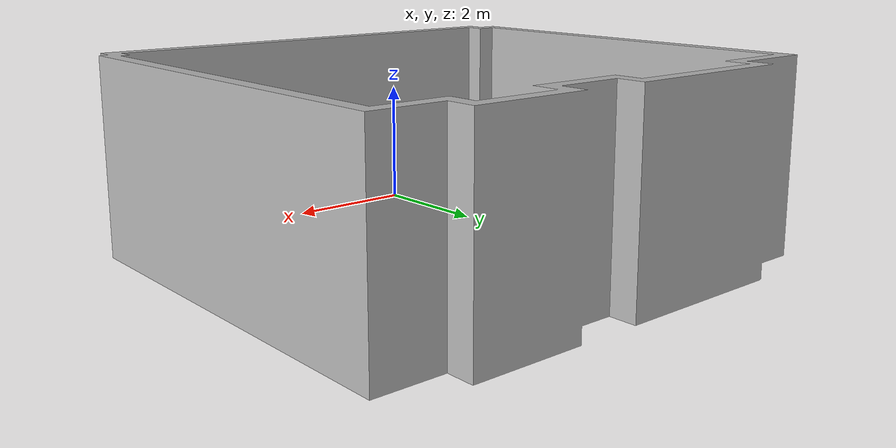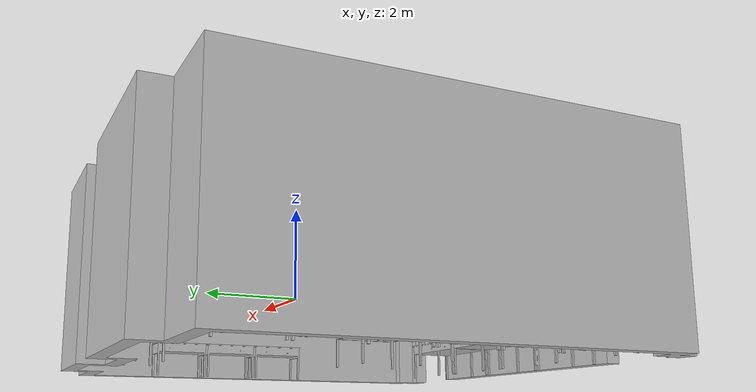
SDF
<?xml version="1.0" ?>
<sdf version='1.4'>
  <model name='room306'>
    <link name='room'>
      <pose>0 10 0 0 -0 0</pose>
      <inertial>
        <pose>-1.56018 -10.0239 0.408628 0 -0 0</pose>
        <mass>47990.7</mass>
        <inertia>
          <ixx>704440</ixx>
          <ixy>-5413.76</ixy>
          <ixz>-2439.59</ixz>
          <iyy>786576</iyy>
          <iyz>3273.3</iyz>
          <izz>1.36061e+06</izz>
        </inertia>
      </inertial>
      <collision name='room_collision'>
        <pose>0 0 0 0 -0 0</pose>
        <geometry>
          <mesh>
            <scale>1 1 1</scale>
            <uri>model://room306/meshes/room.stl</uri>
          </mesh>
        </geometry>
      </collision>
      <collision name='room_collision_table1'>
        <pose>-1.30874 -6.296 -0.804594 1.5708 -0 0</pose>
        <geometry>
          <mesh>
            <scale>1 1 1</scale>
            <uri>model://room306/meshes/table1.stl</uri>
          </mesh>
        </geometry>
      </collision>
      <collision name='room_collision_table10'>
        <pose>-6.34474 -13.596 -0.804594 1.5708 -0 0</pose>
        <geometry>
          <mesh>
            <scale>1 1 1</scale>
            <uri>model://room306/meshes/table10.stl</uri>
          </mesh>
        </geometry>
      </collision>
      <collision name='room_collision_table11'>
        <pose>-3.21574 -14.646 -0.772094 1.5708 -0 0</pose>
        <geometry>
          <mesh>
            <scale>1 1 1</scale>
            <uri>model://room306/meshes/table11.stl</uri>
          </mesh>
        </geometry>
      </collision>
      <collision name='room_collision_table12'>
        <pose>-1.41574 -14.646 -0.772094 1.5708 -0 0</pose>
        <geometry>
          <mesh>
            <scale>1 1 1</scale>
            <uri>model://room306/meshes/table12.stl</uri>
          </mesh>
        </geometry>
      </collision>
      <collision name='room_collision_table13'>
        <pose>0.38426 -14.646 -0.772094 1.5708 -0 0</pose>
        <geometry>
          <mesh>
            <scale>1 1 1</scale>
            <uri>model://room306/meshes/table13.stl</uri>
          </mesh>
        </geometry>
      </collision>
      <collision name='room_collision_table14'>
        <pose>-2.45874 -10.361 -0.767094 1.5708 -0 0</pose>
        <geometry>
          <mesh>
            <scale>1 1 1</scale>
            <uri>model://room306/meshes/table14.stl</uri>
          </mesh>
        </geometry>
      </collision>
      <collision name='room_collision_table2'>
        <pose>3.24626 -8.806 -0.804594 1.5708 -0 0</pose>
        <geometry>
          <mesh>
            <scale>1 1 1</scale>
            <uri>model://room306/meshes/table2.stl</uri>
          </mesh>
        </geometry>
      </collision>
      <collision name='room_collision_table3'>
        <pose>3.24626 -7.606 -0.804594 1.5708 -0 0</pose>
        <geometry>
          <mesh>
            <scale>1 1 1</scale>
            <uri>model://room306/meshes/table3.stl</uri>
          </mesh>
        </geometry>
      </collision>
      <collision name='room_collision_table4'>
        <pose>-1.30874 -6.296 -0.804594 1.5708 -0 0</pose>
        <geometry>
          <mesh>
            <scale>1 1 1</scale>
            <uri>model://room306/meshes/table4.stl</uri>
          </mesh>
        </geometry>
      </collision>
      <collision name='room_collision_table5'>
        <pose>-6.34474 -7.596 -0.804594 1.5708 -0 0</pose>
        <geometry>
          <mesh>
            <scale>1 1 1</scale>
            <uri>model://room306/meshes/table5.stl</uri>
          </mesh>
        </geometry>
      </collision>
      <collision name='room_collision_table6'>
        <pose>-6.34474 -8.796 -0.804594 1.5708 -0 0</pose>
        <geometry>
          <mesh>
            <scale>1 1 1</scale>
            <uri>model://room306/meshes/table6.stl</uri>
          </mesh>
        </geometry>
      </collision>
      <collision name='room_collision_table7'>
        <pose>-6.34474 -9.996 -0.804594 1.5708 -0 0</pose>
        <geometry>
          <mesh>
            <scale>1 1 1</scale>
            <uri>model://room306/meshes/table7.stl</uri>
          </mesh>
        </geometry>
      </collision>
      <collision name='room_collision_table8'>
        <pose>-6.34474 -11.196 -0.804594 1.5708 -0 0</pose>
        <geometry>
          <mesh>
            <scale>1 1 1</scale>
            <uri>model://room306/meshes/table8.stl</uri>
          </mesh>
        </geometry>
      </collision>
      <collision name='room_collision_table9'>
        <pose>-6.34474 -12.396 -0.804594 1.5708 -0 0</pose>
        <geometry>
          <mesh>
            <scale>1 1 1</scale>
            <uri>model://room306/meshes/table9.stl</uri>
          </mesh>
        </geometry>
      </collision>
      <visual name='room_visual'>
        <pose>0 0 0 0 -0 0</pose>
        <geometry>
          <mesh>
            <scale>1 1 1</scale>
            <uri>model://room306/meshes/room.stl</uri>
          </mesh>
        </geometry>
      </visual>
      <visual name='room_visual_table1'>
        <pose>-1.30874 -6.296 -0.804594 1.5708 -0 0</pose>
        <geometry>
          <mesh>
            <scale>1 1 1</scale>
            <uri>model://room306/meshes/table1.stl</uri>
          </mesh>
        </geometry>
      </visual>
      <visual name='room_visual_table10'>
        <pose>-6.34474 -13.596 -0.804594 1.5708 -0 0</pose>
        <geometry>
          <mesh>
            <scale>1 1 1</scale>
            <uri>model://room306/meshes/table10.stl</uri>
          </mesh>
        </geometry>
      </visual>
      <visual name='room_visual_table11'>
        <pose>-3.21574 -14.646 -0.772094 1.5708 -0 0</pose>
        <geometry>
          <mesh>
            <scale>1 1 1</scale>
            <uri>model://room306/meshes/table11.stl</uri>
          </mesh>
        </geometry>
      </visual>
      <visual name='room_visual_table12'>
        <pose>-1.41574 -14.646 -0.772094 1.5708 -0 0</pose>
        <geometry>
          <mesh>
            <scale>1 1 1</scale>
            <uri>model://room306/meshes/table12.stl</uri>
          </mesh>
        </geometry>
      </visual>
      <visual name='room_visual_table13'>
        <pose>0.38426 -14.646 -0.772094 1.5708 -0 0</pose>
        <geometry>
          <mesh>
            <scale>1 1 1</scale>
            <uri>model://room306/meshes/table13.stl</uri>
          </mesh>
        </geometry>
      </visual>
      <visual name='room_visual_table14'>
        <pose>-2.45874 -10.361 -0.767094 1.5708 -0 0</pose>
        <geometry>
          <mesh>
            <scale>1 1 1</scale>
            <uri>model://room306/meshes/table14.stl</uri>
          </mesh>
        </geometry>
      </visual>
      <visual name='room_visual_table2'>
        <pose>3.24626 -8.806 -0.804594 1.5708 -0 0</pose>
        <geometry>
          <mesh>
            <scale>1 1 1</scale>
            <uri>model://room306/meshes/table2.stl</uri>
          </mesh>
        </geometry>
      </visual>
      <visual name='room_visual_table3'>
        <pose>3.24626 -7.606 -0.804594 1.5708 -0 0</pose>
        <geometry>
          <mesh>
            <scale>1 1 1</scale>
            <uri>model://room306/meshes/table3.stl</uri>
          </mesh>
        </geometry>
      </visual>
      <visual name='room_visual_table4'>
        <pose>-1.30874 -6.296 -0.804594 1.5708 -0 0</pose>
        <geometry>
          <mesh>
            <scale>1 1 1</scale>
            <uri>model://room306/meshes/table4.stl</uri>
          </mesh>
        </geometry>
      </visual>
      <visual name='room_visual_table5'>
        <pose>-6.34474 -7.596 -0.804594 1.5708 -0 0</pose>
        <geometry>
          <mesh>
            <scale>1 1 1</scale>
            <uri>model://room306/meshes/table5.stl</uri>
          </mesh>
        </geometry>
      </visual>
      <visual name='room_visual_table6'>
        <pose>-6.34474 -8.796 -0.804594 1.5708 -0 0</pose>
        <geometry>
          <mesh>
            <scale>1 1 1</scale>
            <uri>model://room306/meshes/table6.stl</uri>
          </mesh>
        </geometry>
      </visual>
      <visual name='room_visual_table7'>
        <pose>-6.34474 -9.996 -0.804594 1.5708 -0 0</pose>
        <geometry>
          <mesh>
            <scale>1 1 1</scale>
            <uri>model://room306/meshes/table7.stl</uri>
          </mesh>
        </geometry>
      </visual>
      <visual name='room_visual_table8'>
        <pose>-6.34474 -11.196 -0.804594 1.5708 -0 0</pose>
        <geometry>
          <mesh>
            <scale>1 1 1</scale>
            <uri>model://room306/meshes/table8.stl</uri>
          </mesh>
        </geometry>
      </visual>
      <visual name='room_visual_table9'>
        <pose>-6.34474 -12.396 -0.804594 1.5708 -0 0</pose>
        <geometry>
          <mesh>
            <scale>1 1 1</scale>
            <uri>model://room306/meshes/table9.stl</uri>
          </mesh>
        </geometry>
      </visual>
      <velocity_decay>
        <linear>0</linear>
        <angular>0</angular>
      </velocity_decay>
    </link>
  </model>
</sdf>
